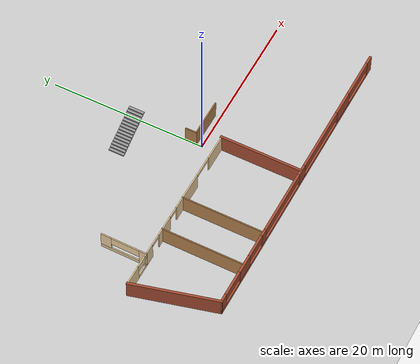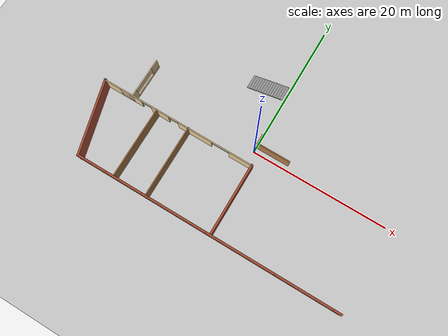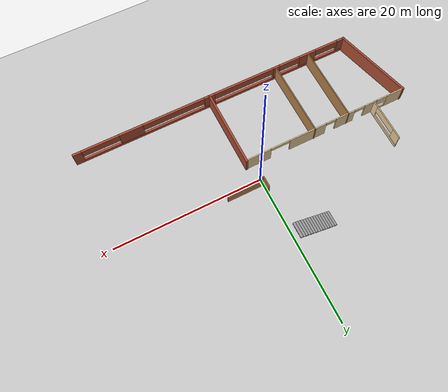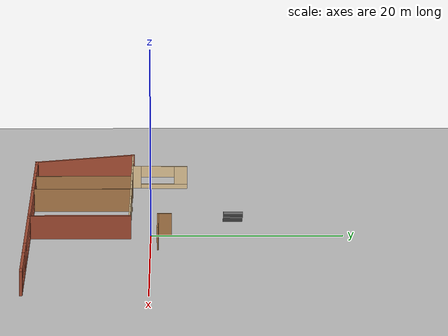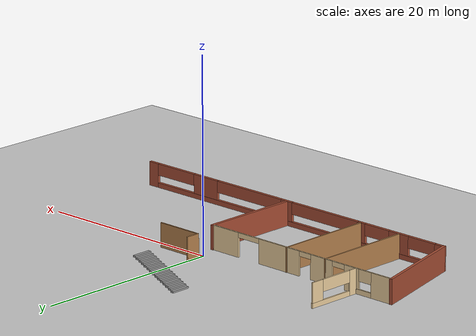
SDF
<sdf version="1.6">
 <world name="default">
  <model name="ground_plane">
   <static>1</static>
   <link name="link">
    <collision name="collision">
     <geometry><plane><normal>0 0 1</normal><size>100 100</size></plane></geometry>
     <surface><friction><ode><mu>100</mu><mu2>50</mu2></ode></friction></surface>
    </collision>
    <visual name="visual">
     <cast_shadows>0</cast_shadows>
     <geometry><plane><normal>0 0 1</normal><size>100 100</size></plane></geometry>
     <material>
      <script><uri>file://media/materials/scripts/gazebo.material</uri><name>Gazebo/Grey</name></script>
     </material>
    </visual>
   </link>
  </model>
  <model name="Building">
   <pose>-1.26631 -0.299272 0 0 -0 0</pose>
   <link name="Stairs_0">
    <visual name="Stairs_0_Visual_0">
     <pose>-4.08117 8.87242 0.083333 0 -0 1.5708</pose>
     <geometry><box><size>2.02255 0.353633 0.166667</size></box></geometry>
     <material>
      <script><uri>file://media/materials/scripts/gazebo.material</uri><name>Gazebo/Grey</name></script>
      <ambient>1 1 1 1</ambient>
     </material>
     <meta><layer>0</layer></meta>
    </visual>
    <collision name="Stairs_0_Collision_0">
     <geometry><box><size>2.02255 0.353633 0.166667</size></box></geometry>
     <pose>-4.08117 8.87242 0.083333 0 -0 1.5708</pose>
    </collision>
    <visual name="Stairs_0_Visual_1">
     <pose>-3.72754 8.87242 0.25 0 -0 1.5708</pose>
     <geometry><box><size>2.02255 0.353633 0.166667</size></box></geometry>
     <material>
      <script><uri>file://media/materials/scripts/gazebo.material</uri><name>Gazebo/Grey</name></script>
      <ambient>1 1 1 1</ambient>
     </material>
     <meta><layer>0</layer></meta>
    </visual>
    <collision name="Stairs_0_Collision_1">
     <geometry><box><size>2.02255 0.353633 0.166667</size></box></geometry>
     <pose>-3.72754 8.87242 0.25 0 -0 1.5708</pose>
    </collision>
    <visual name="Stairs_0_Visual_2">
     <pose>-3.3739 8.87242 0.416667 0 -0 1.5708</pose>
     <geometry><box><size>2.02255 0.353633 0.166667</size></box></geometry>
     <material>
      <script><uri>file://media/materials/scripts/gazebo.material</uri><name>Gazebo/Grey</name></script>
      <ambient>1 1 1 1</ambient>
     </material>
     <meta><layer>0</layer></meta>
    </visual>
    <collision name="Stairs_0_Collision_2">
     <geometry><box><size>2.02255 0.353633 0.166667</size></box></geometry>
     <pose>-3.3739 8.87242 0.416667 0 -0 1.5708</pose>
    </collision>
    <visual name="Stairs_0_Visual_3">
     <pose>-3.02027 8.87242 0.583333 0 -0 1.5708</pose>
     <geometry><box><size>2.02255 0.353633 0.166667</size></box></geometry>
     <material>
      <script><uri>file://media/materials/scripts/gazebo.material</uri><name>Gazebo/Grey</name></script>
      <ambient>1 1 1 1</ambient>
     </material>
     <meta><layer>0</layer></meta>
    </visual>
    <collision name="Stairs_0_Collision_3">
     <geometry><box><size>2.02255 0.353633 0.166667</size></box></geometry>
     <pose>-3.02027 8.87242 0.583333 0 -0 1.5708</pose>
    </collision>
    <visual name="Stairs_0_Visual_4">
     <pose>-2.66664 8.87242 0.75 0 -0 1.5708</pose>
     <geometry><box><size>2.02255 0.353633 0.166667</size></box></geometry>
     <material>
      <script><uri>file://media/materials/scripts/gazebo.material</uri><name>Gazebo/Grey</name></script>
      <ambient>1 1 1 1</ambient>
     </material>
     <meta><layer>0</layer></meta>
    </visual>
    <collision name="Stairs_0_Collision_4">
     <geometry><box><size>2.02255 0.353633 0.166667</size></box></geometry>
     <pose>-2.66664 8.87242 0.75 0 -0 1.5708</pose>
    </collision>
    <visual name="Stairs_0_Visual_5">
     <pose>-2.313 8.87242 0.916667 0 -0 1.5708</pose>
     <geometry><box><size>2.02255 0.353633 0.166667</size></box></geometry>
     <material>
      <script><uri>file://media/materials/scripts/gazebo.material</uri><name>Gazebo/Grey</name></script>
      <ambient>1 1 1 1</ambient>
     </material>
     <meta><layer>0</layer></meta>
    </visual>
    <collision name="Stairs_0_Collision_5">
     <geometry><box><size>2.02255 0.353633 0.166667</size></box></geometry>
     <pose>-2.313 8.87242 0.916667 0 -0 1.5708</pose>
    </collision>
    <visual name="Stairs_0_Visual_6">
     <pose>-1.95937 8.87242 1.08333 0 -0 1.5708</pose>
     <geometry><box><size>2.02255 0.353633 0.166667</size></box></geometry>
     <material>
      <script><uri>file://media/materials/scripts/gazebo.material</uri><name>Gazebo/Grey</name></script>
      <ambient>1 1 1 1</ambient>
     </material>
     <meta><layer>0</layer></meta>
    </visual>
    <collision name="Stairs_0_Collision_6">
     <geometry><box><size>2.02255 0.353633 0.166667</size></box></geometry>
     <pose>-1.95937 8.87242 1.08333 0 -0 1.5708</pose>
    </collision>
    <visual name="Stairs_0_Visual_7">
     <pose>-1.60574 8.87242 1.25 0 -0 1.5708</pose>
     <geometry><box><size>2.02255 0.353633 0.166667</size></box></geometry>
     <material>
      <script><uri>file://media/materials/scripts/gazebo.material</uri><name>Gazebo/Grey</name></script>
      <ambient>1 1 1 1</ambient>
     </material>
     <meta><layer>0</layer></meta>
    </visual>
    <collision name="Stairs_0_Collision_7">
     <geometry><box><size>2.02255 0.353633 0.166667</size></box></geometry>
     <pose>-1.60574 8.87242 1.25 0 -0 1.5708</pose>
    </collision>
    <visual name="Stairs_0_Visual_8">
     <pose>-1.2521 8.87242 1.41667 0 -0 1.5708</pose>
     <geometry><box><size>2.02255 0.353633 0.166667</size></box></geometry>
     <material>
      <script><uri>file://media/materials/scripts/gazebo.material</uri><name>Gazebo/Grey</name></script>
      <ambient>1 1 1 1</ambient>
     </material>
     <meta><layer>0</layer></meta>
    </visual>
    <collision name="Stairs_0_Collision_8">
     <geometry><box><size>2.02255 0.353633 0.166667</size></box></geometry>
     <pose>-1.2521 8.87242 1.41667 0 -0 1.5708</pose>
    </collision>
    <visual name="Stairs_0_Visual_9">
     <pose>-0.898471 8.87242 1.58333 0 -0 1.5708</pose>
     <geometry><box><size>2.02255 0.353633 0.166667</size></box></geometry>
     <material>
      <script><uri>file://media/materials/scripts/gazebo.material</uri><name>Gazebo/Grey</name></script>
      <ambient>1 1 1 1</ambient>
     </material>
     <meta><layer>0</layer></meta>
    </visual>
    <collision name="Stairs_0_Collision_9">
     <geometry><box><size>2.02255 0.353633 0.166667</size></box></geometry>
     <pose>-0.898471 8.87242 1.58333 0 -0 1.5708</pose>
    </collision>
    <visual name="Stairs_0_Visual_10">
     <pose>-0.544838 8.87242 1.75 0 -0 1.5708</pose>
     <geometry><box><size>2.02255 0.353633 0.166667</size></box></geometry>
     <material>
      <script><uri>file://media/materials/scripts/gazebo.material</uri><name>Gazebo/Grey</name></script>
      <ambient>1 1 1 1</ambient>
     </material>
     <meta><layer>0</layer></meta>
    </visual>
    <collision name="Stairs_0_Collision_10">
     <geometry><box><size>2.02255 0.353633 0.166667</size></box></geometry>
     <pose>-0.544838 8.87242 1.75 0 -0 1.5708</pose>
    </collision>
    <visual name="Stairs_0_Visual_11">
     <pose>-0.191204 8.87242 1.91667 0 -0 1.5708</pose>
     <geometry><box><size>2.02255 0.353633 0.166667</size></box></geometry>
     <material>
      <script><uri>file://media/materials/scripts/gazebo.material</uri><name>Gazebo/Grey</name></script>
      <ambient>1 1 1 1</ambient>
     </material>
     <meta><layer>0</layer></meta>
    </visual>
    <collision name="Stairs_0_Collision_11">
     <geometry><box><size>2.02255 0.353633 0.166667</size></box></geometry>
     <pose>-0.191204 8.87242 1.91667 0 -0 1.5708</pose>
    </collision>
    <visual name="Stairs_0_Visual_12">
     <pose>0.162429 8.87242 2.08333 0 -0 1.5708</pose>
     <geometry><box><size>2.02255 0.353633 0.166667</size></box></geometry>
     <material>
      <script><uri>file://media/materials/scripts/gazebo.material</uri><name>Gazebo/Grey</name></script>
      <ambient>1 1 1 1</ambient>
     </material>
     <meta><layer>0</layer></meta>
    </visual>
    <collision name="Stairs_0_Collision_12">
     <geometry><box><size>2.02255 0.353633 0.166667</size></box></geometry>
     <pose>0.162429 8.87242 2.08333 0 -0 1.5708</pose>
    </collision>
    <visual name="Stairs_0_Visual_13">
     <pose>0.516062 8.87242 2.25 0 -0 1.5708</pose>
     <geometry><box><size>2.02255 0.353633 0.166667</size></box></geometry>
     <material>
      <script><uri>file://media/materials/scripts/gazebo.material</uri><name>Gazebo/Grey</name></script>
      <ambient>1 1 1 1</ambient>
     </material>
     <meta><layer>0</layer></meta>
    </visual>
    <collision name="Stairs_0_Collision_13">
     <geometry><box><size>2.02255 0.353633 0.166667</size></box></geometry>
     <pose>0.516062 8.87242 2.25 0 -0 1.5708</pose>
    </collision>
    <visual name="Stairs_0_Visual_14">
     <pose>0.869695 8.87242 2.41667 0 -0 1.5708</pose>
     <geometry><box><size>2.02255 0.353633 0.166667</size></box></geometry>
     <material>
      <script><uri>file://media/materials/scripts/gazebo.material</uri><name>Gazebo/Grey</name></script>
      <ambient>1 1 1 1</ambient>
     </material>
     <meta><layer>0</layer></meta>
    </visual>
    <collision name="Stairs_0_Collision_14">
     <geometry><box><size>2.02255 0.353633 0.166667</size></box></geometry>
     <pose>0.869695 8.87242 2.41667 0 -0 1.5708</pose>
    </collision>
   </link>
   <link name="Wall_20">
    <pose>1.39062 -12.3332 0 0 -0 3.14159</pose>
    <visual name="Wall_20_Visual_0">
     <pose>-19.0829 0 1.25 0 -0 0</pose>
     <geometry><box><size>1.20436 0.3 2.5</size></box></geometry>
     <material>
      <script><uri>file://media/materials/scripts/gazebo.material</uri><name>Gazebo/Bricks</name></script>
      <ambient>1 1 1 1</ambient>
     </material>
     <meta><layer>0</layer></meta>
    </visual>
    <collision name="Wall_20_Collision_0">
     <geometry><box><size>1.20436 0.3 2.5</size></box></geometry>
     <pose>-19.0829 0 1.25 0 -0 0</pose>
    </collision>
    <visual name="Wall_20_Visual_1">
     <pose>0.602179 0 0.25 0 -0 0</pose>
     <geometry><box><size>38.1657 0.3 0.5</size></box></geometry>
     <material>
      <script><uri>file://media/materials/scripts/gazebo.material</uri><name>Gazebo/Bricks</name></script>
      <ambient>1 1 1 1</ambient>
     </material>
     <meta><layer>0</layer></meta>
    </visual>
    <collision name="Wall_20_Collision_1">
     <geometry><box><size>38.1657 0.3 0.5</size></box></geometry>
     <pose>0.602179 0 0.25 0 -0 0</pose>
    </collision>
    <visual name="Wall_20_Visual_2">
     <pose>-11.7964 0 1.5 0 -0 0</pose>
     <geometry><box><size>3.25696 0.3 2</size></box></geometry>
     <material>
      <script><uri>file://media/materials/scripts/gazebo.material</uri><name>Gazebo/Bricks</name></script>
      <ambient>1 1 1 1</ambient>
     </material>
     <meta><layer>0</layer></meta>
    </visual>
    <collision name="Wall_20_Collision_2">
     <geometry><box><size>3.25696 0.3 2</size></box></geometry>
     <pose>-11.7964 0 1.5 0 -0 0</pose>
    </collision>
    <visual name="Wall_20_Visual_3">
     <pose>-0.778929 0 1.5 0 -0 0</pose>
     <geometry><box><size>1.5069 0.3 2</size></box></geometry>
     <material>
      <script><uri>file://media/materials/scripts/gazebo.material</uri><name>Gazebo/Bricks</name></script>
      <ambient>1 1 1 1</ambient>
     </material>
     <meta><layer>0</layer></meta>
    </visual>
    <collision name="Wall_20_Collision_3">
     <geometry><box><size>1.5069 0.3 2</size></box></geometry>
     <pose>-0.778929 0 1.5 0 -0 0</pose>
    </collision>
    <visual name="Wall_20_Visual_4">
     <pose>9.12483 0 1.5 0 -0 0</pose>
     <geometry><box><size>0.950063 0.3 2</size></box></geometry>
     <material>
      <script><uri>file://media/materials/scripts/gazebo.material</uri><name>Gazebo/Bricks</name></script>
      <ambient>1 1 1 1</ambient>
     </material>
     <meta><layer>0</layer></meta>
    </visual>
    <collision name="Wall_20_Collision_4">
     <geometry><box><size>0.950063 0.3 2</size></box></geometry>
     <pose>9.12483 0 1.5 0 -0 0</pose>
    </collision>
    <visual name="Wall_20_Visual_5">
     <pose>13.906 0 1.5 0 -0 0</pose>
     <geometry><box><size>2.47804 0.3 2</size></box></geometry>
     <material>
      <script><uri>file://media/materials/scripts/gazebo.material</uri><name>Gazebo/Bricks</name></script>
      <ambient>1 1 1 1</ambient>
     </material>
     <meta><layer>0</layer></meta>
    </visual>
    <collision name="Wall_20_Collision_5">
     <geometry><box><size>2.47804 0.3 2</size></box></geometry>
     <pose>13.906 0 1.5 0 -0 0</pose>
    </collision>
    <visual name="Wall_20_Visual_6">
     <pose>19.0878 0 1.5 0 -0 0</pose>
     <geometry><box><size>1.19447 0.3 2</size></box></geometry>
     <material>
      <script><uri>file://media/materials/scripts/gazebo.material</uri><name>Gazebo/Bricks</name></script>
      <ambient>1 1 1 1</ambient>
     </material>
     <meta><layer>0</layer></meta>
    </visual>
    <collision name="Wall_20_Collision_6">
     <geometry><box><size>1.19447 0.3 2</size></box></geometry>
     <pose>19.0878 0 1.5 0 -0 0</pose>
    </collision>
    <visual name="Wall_20_Visual_7">
     <pose>-15.9528 0 1.9 0 -0 0</pose>
     <geometry><box><size>5.05583 0.3 1.2</size></box></geometry>
     <material>
      <script><uri>file://media/materials/scripts/gazebo.material</uri><name>Gazebo/Bricks</name></script>
      <ambient>1 1 1 1</ambient>
     </material>
     <meta><layer>0</layer></meta>
    </visual>
    <collision name="Wall_20_Collision_7">
     <geometry><box><size>5.05583 0.3 1.2</size></box></geometry>
     <pose>-15.9528 0 1.9 0 -0 0</pose>
    </collision>
    <visual name="Wall_20_Visual_8">
     <pose>-5.85013 0 1.9 0 -0 0</pose>
     <geometry><box><size>8.63551 0.3 1.2</size></box></geometry>
     <material>
      <script><uri>file://media/materials/scripts/gazebo.material</uri><name>Gazebo/Bricks</name></script>
      <ambient>1 1 1 1</ambient>
     </material>
     <meta><layer>0</layer></meta>
    </visual>
    <collision name="Wall_20_Collision_8">
     <geometry><box><size>8.63551 0.3 1.2</size></box></geometry>
     <pose>-5.85013 0 1.9 0 -0 0</pose>
    </collision>
    <visual name="Wall_20_Visual_9">
     <pose>4.31216 0 1.9 0 -0 0</pose>
     <geometry><box><size>8.67528 0.3 1.2</size></box></geometry>
     <material>
      <script><uri>file://media/materials/scripts/gazebo.material</uri><name>Gazebo/Bricks</name></script>
      <ambient>1 1 1 1</ambient>
     </material>
     <meta><layer>0</layer></meta>
    </visual>
    <collision name="Wall_20_Collision_9">
     <geometry><box><size>8.67528 0.3 1.2</size></box></geometry>
     <pose>4.31216 0 1.9 0 -0 0</pose>
    </collision>
    <visual name="Wall_20_Visual_10">
     <pose>11.1334 0 1.9 0 -0 0</pose>
     <geometry><box><size>3.06713 0.3 1.2</size></box></geometry>
     <material>
      <script><uri>file://media/materials/scripts/gazebo.material</uri><name>Gazebo/Bricks</name></script>
      <ambient>1 1 1 1</ambient>
     </material>
     <meta><layer>0</layer></meta>
    </visual>
    <collision name="Wall_20_Collision_10">
     <geometry><box><size>3.06713 0.3 1.2</size></box></geometry>
     <pose>11.1334 0 1.9 0 -0 0</pose>
    </collision>
    <visual name="Wall_20_Visual_11">
     <pose>16.8178 0 1.9 0 -0 0</pose>
     <geometry><box><size>3.34554 0.3 1.2</size></box></geometry>
     <material>
      <script><uri>file://media/materials/scripts/gazebo.material</uri><name>Gazebo/Bricks</name></script>
      <ambient>1 1 1 1</ambient>
     </material>
     <meta><layer>0</layer></meta>
    </visual>
    <collision name="Wall_20_Collision_11">
     <geometry><box><size>3.34554 0.3 1.2</size></box></geometry>
     <pose>16.8178 0 1.9 0 -0 0</pose>
    </collision>
   </link>
   <link name="Wall_38">
    <collision name="Wall_38_Collision">
     <geometry><box><size>11.1419 0.3 2.5</size></box></geometry>
     <pose>0 0 1.25 0 -0 0</pose>
    </collision>
    <visual name="Wall_38_Visual">
     <pose>0 0 1.25 0 -0 0</pose>
     <geometry><box><size>11.1419 0.3 2.5</size></box></geometry>
     <material>
      <script><uri>file://media/materials/scripts/gazebo.material</uri><name>Gazebo/Bricks</name></script>
      <ambient>1 1 1 1</ambient>
     </material>
     <meta><layer>0</layer></meta>
    </visual>
    <pose>-19.5334 -7.09324 0 0 -0 1.82991</pose>
   </link>
   <link name="Wall_39">
    <pose>-18.7098 -1.8533 0 0 0 -2.8e-05</pose>
    <visual name="Wall_39_Visual_0">
     <pose>-1.00678 0 1.25 0 -0 0</pose>
     <geometry><box><size>2.56168 0.15 2.5</size></box></geometry>
     <material>
      <script><uri>file://media/materials/scripts/gazebo.material</uri><name>Gazebo/Grey</name></script>
      <ambient>0.921569 0.807843 0.615686 1</ambient>
     </material>
     <meta><layer>0</layer></meta>
    </visual>
    <collision name="Wall_39_Collision_0">
     <geometry><box><size>2.56168 0.15 2.5</size></box></geometry>
     <pose>-1.00678 0 1.25 0 -0 0</pose>
    </collision>
    <visual name="Wall_39_Visual_1">
     <pose>1.28084 0 0.25 0 -0 0</pose>
     <geometry><box><size>2.01356 0.15 0.5</size></box></geometry>
     <material>
      <script><uri>file://media/materials/scripts/gazebo.material</uri><name>Gazebo/Grey</name></script>
      <ambient>0.921569 0.807843 0.615686 1</ambient>
     </material>
     <meta><layer>0</layer></meta>
    </visual>
    <collision name="Wall_39_Collision_1">
     <geometry><box><size>2.01356 0.15 0.5</size></box></geometry>
     <pose>1.28084 0 0.25 0 -0 0</pose>
    </collision>
    <visual name="Wall_39_Visual_2">
     <pose>2.05678 0 1.5 0 -0 0</pose>
     <geometry><box><size>0.46168 0.15 2</size></box></geometry>
     <material>
      <script><uri>file://media/materials/scripts/gazebo.material</uri><name>Gazebo/Grey</name></script>
      <ambient>0.921569 0.807843 0.615686 1</ambient>
     </material>
     <meta><layer>0</layer></meta>
    </visual>
    <collision name="Wall_39_Collision_2">
     <geometry><box><size>0.46168 0.15 2</size></box></geometry>
     <pose>2.05678 0 1.5 0 -0 0</pose>
    </collision>
    <visual name="Wall_39_Visual_3">
     <pose>1.05 0 1.9 0 -0 0</pose>
     <geometry><box><size>1.55187 0.15 1.2</size></box></geometry>
     <material>
      <script><uri>file://media/materials/scripts/gazebo.material</uri><name>Gazebo/Grey</name></script>
      <ambient>0.921569 0.807843 0.615686 1</ambient>
     </material>
     <meta><layer>0</layer></meta>
    </visual>
    <collision name="Wall_39_Collision_3">
     <geometry><box><size>1.55187 0.15 1.2</size></box></geometry>
     <pose>1.05 0 1.9 0 -0 0</pose>
    </collision>
   </link>
   <link name="Wall_40">
    <pose>-16.4724 1.07267 0 0 -0 1.56232</pose>
    <visual name="Wall_40_Visual_0">
     <pose>-2.50508 0 1.25 0 -0 0</pose>
     <geometry><box><size>0.99212 0.15 2.5</size></box></geometry>
     <material>
      <script><uri>file://media/materials/scripts/gazebo.material</uri><name>Gazebo/Grey</name></script>
      <ambient>0.921569 0.807843 0.615686 1</ambient>
     </material>
     <meta><layer>0</layer></meta>
    </visual>
    <collision name="Wall_40_Collision_0">
     <geometry><box><size>0.99212 0.15 2.5</size></box></geometry>
     <pose>-2.50508 0 1.25 0 -0 0</pose>
    </collision>
    <visual name="Wall_40_Visual_1">
     <pose>0.49606 0 0.25 0 -0 0</pose>
     <geometry><box><size>5.01015 0.15 0.5</size></box></geometry>
     <material>
      <script><uri>file://media/materials/scripts/gazebo.material</uri><name>Gazebo/Grey</name></script>
      <ambient>0.921569 0.807843 0.615686 1</ambient>
     </material>
     <meta><layer>0</layer></meta>
    </visual>
    <collision name="Wall_40_Collision_1">
     <geometry><box><size>5.01015 0.15 0.5</size></box></geometry>
     <pose>0.49606 0 0.25 0 -0 0</pose>
    </collision>
    <visual name="Wall_40_Visual_2">
     <pose>2.31017 0 1.5 0 -0 0</pose>
     <geometry><box><size>1.38193 0.15 2</size></box></geometry>
     <material>
      <script><uri>file://media/materials/scripts/gazebo.material</uri><name>Gazebo/Grey</name></script>
      <ambient>0.921569 0.807843 0.615686 1</ambient>
     </material>
     <meta><layer>0</layer></meta>
    </visual>
    <collision name="Wall_40_Collision_2">
     <geometry><box><size>1.38193 0.15 2</size></box></geometry>
     <pose>2.31017 0 1.5 0 -0 0</pose>
    </collision>
    <visual name="Wall_40_Visual_3">
     <pose>-0.194907 0 1.9 0 -0 0</pose>
     <geometry><box><size>3.62822 0.15 1.2</size></box></geometry>
     <material>
      <script><uri>file://media/materials/scripts/gazebo.material</uri><name>Gazebo/Grey</name></script>
      <ambient>0.921569 0.807843 0.615686 1</ambient>
     </material>
     <meta><layer>0</layer></meta>
    </visual>
    <collision name="Wall_40_Collision_3">
     <geometry><box><size>3.62822 0.15 1.2</size></box></geometry>
     <pose>-0.194907 0 1.9 0 -0 0</pose>
    </collision>
   </link>
   <link name="Wall_54">
    <pose>-7.19729 -1.8796 0 0 0 -0.002821</pose>
    <visual name="Wall_54_Visual_0">
     <pose>-8.62498 0 1.25 0 -0 0</pose>
     <geometry><box><size>1.50004 0.15 2.5</size></box></geometry>
     <material>
      <script><uri>file://media/materials/scripts/gazebo.material</uri><name>Gazebo/Grey</name></script>
      <ambient>0.921569 0.807843 0.615686 1</ambient>
     </material>
     <meta><layer>0</layer></meta>
    </visual>
    <collision name="Wall_54_Collision_0">
     <geometry><box><size>1.50004 0.15 2.5</size></box></geometry>
     <pose>-8.62498 0 1.25 0 -0 0</pose>
    </collision>
    <visual name="Wall_54_Visual_1">
     <pose>-4.97384 0 1.25 0 -0 0</pose>
     <geometry><box><size>2.79924 0.15 2.5</size></box></geometry>
     <material>
      <script><uri>file://media/materials/scripts/gazebo.material</uri><name>Gazebo/Grey</name></script>
      <ambient>0.921569 0.807843 0.615686 1</ambient>
     </material>
     <meta><layer>0</layer></meta>
    </visual>
    <collision name="Wall_54_Collision_1">
     <geometry><box><size>2.79924 0.15 2.5</size></box></geometry>
     <pose>-4.97384 0 1.25 0 -0 0</pose>
    </collision>
    <visual name="Wall_54_Visual_2">
     <pose>0.514863 0 1.25 0 -0 0</pose>
     <geometry><box><size>5.23532 0.15 2.5</size></box></geometry>
     <material>
      <script><uri>file://media/materials/scripts/gazebo.material</uri><name>Gazebo/Grey</name></script>
      <ambient>0.921569 0.807843 0.615686 1</ambient>
     </material>
     <meta><layer>0</layer></meta>
    </visual>
    <collision name="Wall_54_Collision_2">
     <geometry><box><size>5.23532 0.15 2.5</size></box></geometry>
     <pose>0.514863 0 1.25 0 -0 0</pose>
    </collision>
    <visual name="Wall_54_Visual_3">
     <pose>7.60601 0 1.25 0 -0 0</pose>
     <geometry><box><size>3.53798 0.15 2.5</size></box></geometry>
     <material>
      <script><uri>file://media/materials/scripts/gazebo.material</uri><name>Gazebo/Grey</name></script>
      <ambient>0.921569 0.807843 0.615686 1</ambient>
     </material>
     <meta><layer>0</layer></meta>
    </visual>
    <collision name="Wall_54_Collision_3">
     <geometry><box><size>3.53798 0.15 2.5</size></box></geometry>
     <pose>7.60601 0 1.25 0 -0 0</pose>
    </collision>
    <visual name="Wall_54_Visual_4">
     <pose>-7.12421 0 2.25 0 -0 0</pose>
     <geometry><box><size>1.5015 0.15 0.5</size></box></geometry>
     <material>
      <script><uri>file://media/materials/scripts/gazebo.material</uri><name>Gazebo/Grey</name></script>
      <ambient>0.921569 0.807843 0.615686 1</ambient>
     </material>
     <meta><layer>0</layer></meta>
    </visual>
    <collision name="Wall_54_Collision_4">
     <geometry><box><size>1.5015 0.15 0.5</size></box></geometry>
     <pose>-7.12421 0 2.25 0 -0 0</pose>
    </collision>
    <visual name="Wall_54_Visual_5">
     <pose>-2.83851 0 2.25 0 -0 0</pose>
     <geometry><box><size>1.47142 0.15 0.5</size></box></geometry>
     <material>
      <script><uri>file://media/materials/scripts/gazebo.material</uri><name>Gazebo/Grey</name></script>
      <ambient>0.921569 0.807843 0.615686 1</ambient>
     </material>
     <meta><layer>0</layer></meta>
    </visual>
    <collision name="Wall_54_Collision_5">
     <geometry><box><size>1.47142 0.15 0.5</size></box></geometry>
     <pose>-2.83851 0 2.25 0 -0 0</pose>
    </collision>
    <visual name="Wall_54_Visual_6">
     <pose>4.48477 0 2.25 0 -0 0</pose>
     <geometry><box><size>2.7045 0.15 0.5</size></box></geometry>
     <material>
      <script><uri>file://media/materials/scripts/gazebo.material</uri><name>Gazebo/Grey</name></script>
      <ambient>0.921569 0.807843 0.615686 1</ambient>
     </material>
     <meta><layer>0</layer></meta>
    </visual>
    <collision name="Wall_54_Collision_6">
     <geometry><box><size>2.7045 0.15 0.5</size></box></geometry>
     <pose>4.48477 0 2.25 0 -0 0</pose>
    </collision>
   </link>
   <link name="Wall_55">
    <collision name="Wall_55_Collision">
     <geometry><box><size>10.65 0.3 2.5</size></box></geometry>
     <pose>0 0 1.25 0 -0 0</pose>
    </collision>
    <visual name="Wall_55_Visual">
     <pose>0 0 1.25 0 -0 0</pose>
     <geometry><box><size>10.65 0.3 2.5</size></box></geometry>
     <material>
      <script><uri>file://media/materials/scripts/gazebo.material</uri><name>Gazebo/Bricks</name></script>
      <ambient>1 1 1 1</ambient>
     </material>
     <meta><layer>0</layer></meta>
    </visual>
    <pose>2.10262 -7.05454 0 0 0 -1.5708</pose>
   </link>
   <link name="Wall_57">
    <collision name="Wall_57_Collision">
     <geometry><box><size>10.5 0.15 2.5</size></box></geometry>
     <pose>0 0 1.25 0 -0 0</pose>
    </collision>
    <visual name="Wall_57_Visual">
     <pose>0 0 1.25 0 -0 0</pose>
     <geometry><box><size>10.5 0.15 2.5</size></box></geometry>
     <material>
      <script><uri>file://media/materials/scripts/gazebo.material</uri><name>Gazebo/Wood</name></script>
      <ambient>1 1 1 1</ambient>
     </material>
     <meta><layer>0</layer></meta>
    </visual>
    <pose>-7.67714 -7.00521 0 0 0 -1.5708</pose>
   </link>
   <link name="Wall_59">
    <collision name="Wall_59_Collision">
     <geometry><box><size>10.5 0.15 2.5</size></box></geometry>
     <pose>0 0 1.25 0 -0 0</pose>
    </collision>
    <visual name="Wall_59_Visual">
     <pose>0 0 1.25 0 -0 0</pose>
     <geometry><box><size>10.5 0.15 2.5</size></box></geometry>
     <material>
      <script><uri>file://media/materials/scripts/gazebo.material</uri><name>Gazebo/Wood</name></script>
      <ambient>1 1 1 1</ambient>
     </material>
     <meta><layer>0</layer></meta>
    </visual>
    <pose>-12.6217 -7.00521 0 0 0 -1.5708</pose>
   </link>
   <link name="Wall_88">
    <collision name="Wall_88_Collision">
     <geometry><box><size>1.5 0.15 2.5</size></box></geometry>
     <pose>0 0 1.25 0 -0 0</pose>
    </collision>
    <visual name="Wall_88_Visual">
     <pose>0 0 1.25 0 -0 0</pose>
     <geometry><box><size>1.5 0.15 2.5</size></box></geometry>
     <material>
      <script><uri>file://media/materials/scripts/gazebo.material</uri><name>Gazebo/Wood</name></script>
      <ambient>1 1 1 1</ambient>
     </material>
     <meta><layer>0</layer></meta>
    </visual>
    <pose>1.24759 1.72164 0 0 0 -1.5708</pose>
   </link>
   <link name="Wall_89">
    <collision name="Wall_89_Collision">
     <geometry><box><size>5 0.15 2.5</size></box></geometry>
     <pose>0 0 1.25 0 -0 0</pose>
    </collision>
    <visual name="Wall_89_Visual">
     <pose>0 0 1.25 0 -0 0</pose>
     <geometry><box><size>5 0.15 2.5</size></box></geometry>
     <material>
      <script><uri>file://media/materials/scripts/gazebo.material</uri><name>Gazebo/Wood</name></script>
      <ambient>1 1 1 1</ambient>
     </material>
     <meta><layer>0</layer></meta>
    </visual>
    <pose>3.67259 1.04664 0 0 -0 0</pose>
   </link>
   <static>1</static>
  </model>
 </world>
</sdf>
